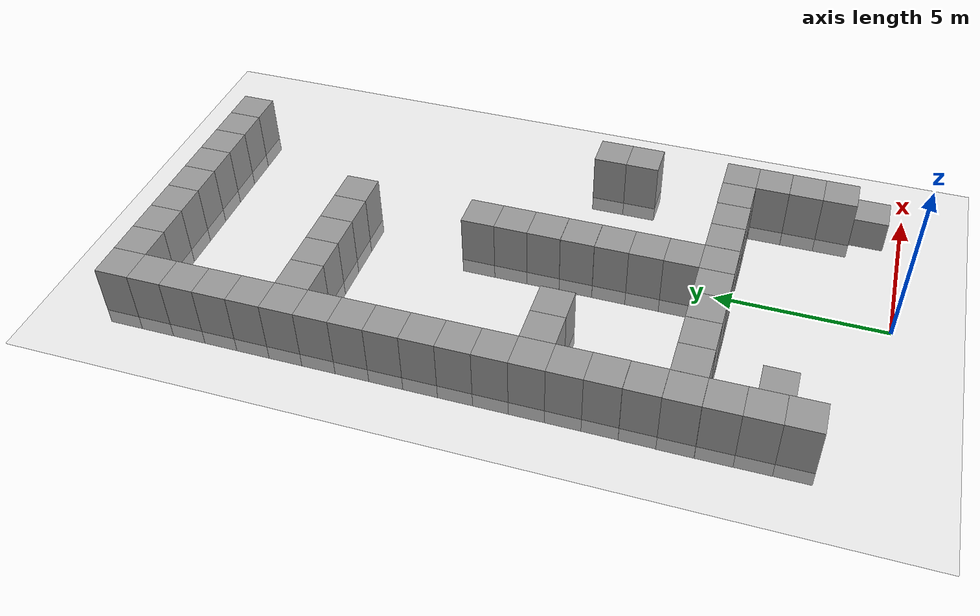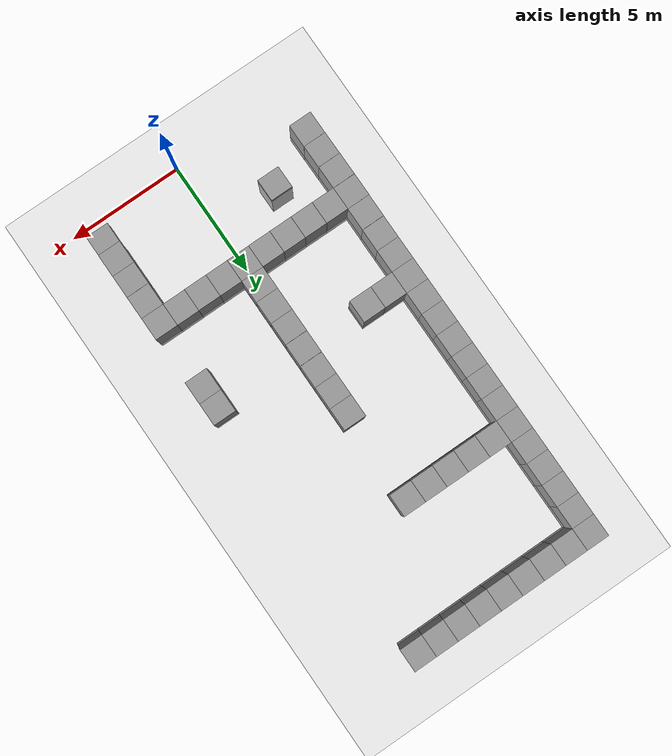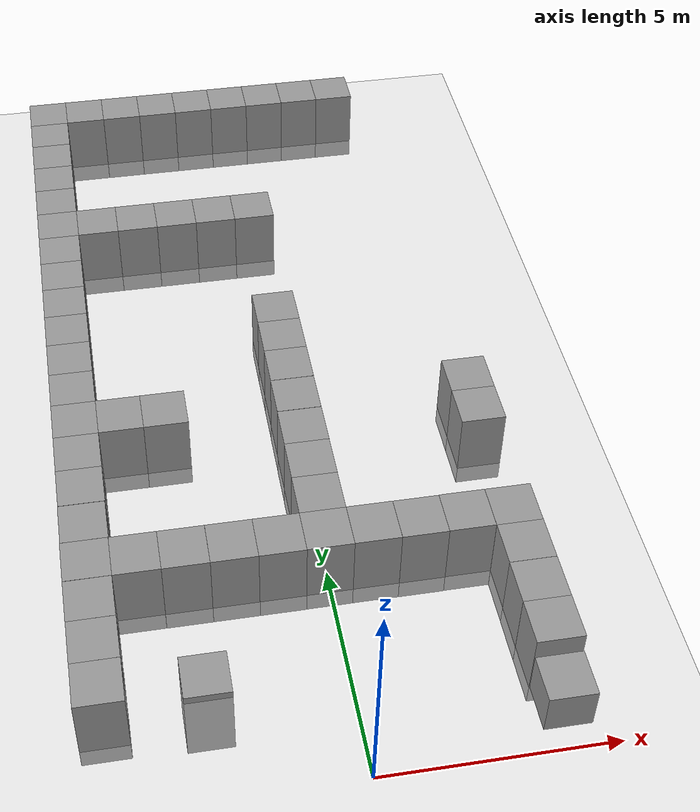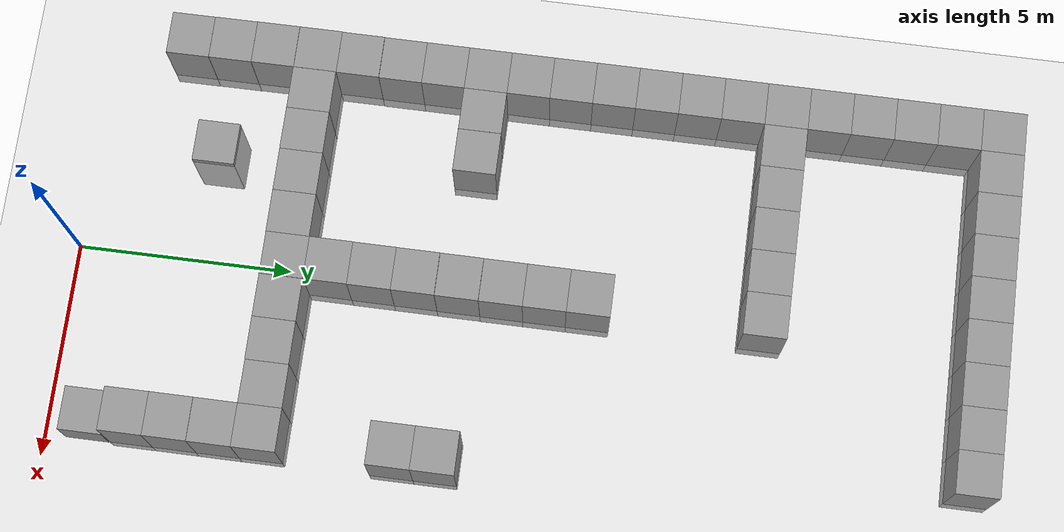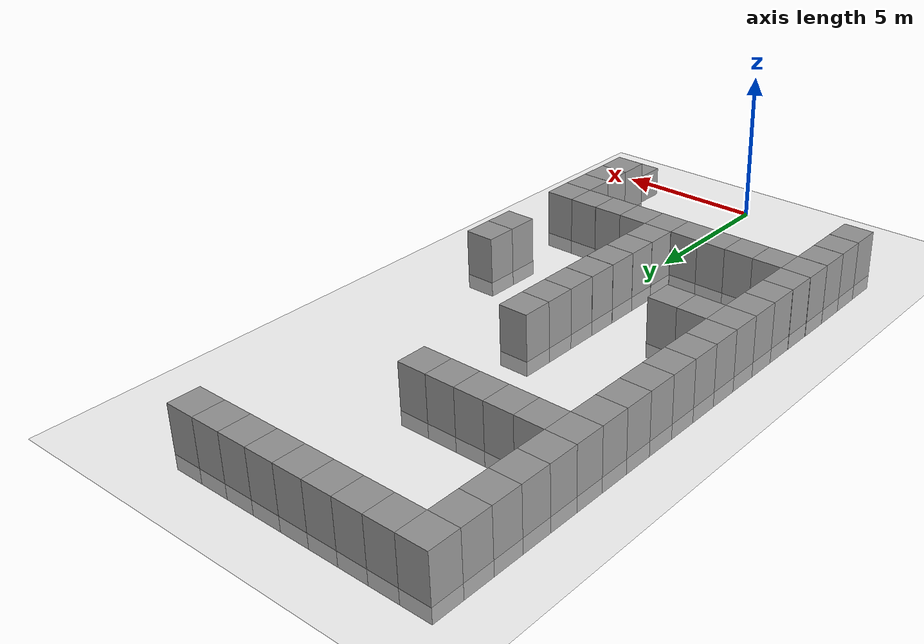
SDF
<sdf version="1.4">
 <world name="default">
  <model name="ground_plane">
   <static>1</static>
   <link name="link">
    <collision name="collision">
     <geometry><plane><normal>0 0 1</normal><size>100 100</size></plane></geometry>
     <surface><friction><ode><mu>100</mu><mu2>50</mu2></ode></friction></surface>
    </collision>
    <visual name="visual">
     <cast_shadows>0</cast_shadows>
     <geometry><plane><normal>0 0 1</normal><size>100 100</size></plane></geometry>
     <material>
      <script><uri>file://media/materials/scripts/gazebo.material</uri><name>Gazebo/Grey</name></script>
     </material>
    </visual>
    <velocity_decay><linear>0</linear><angular>0</angular></velocity_decay>
   </link>
  </model>
  <model name="unit_box_1">
   <pose>-5.01661 4.99523 0.5 0 -0 0.000223</pose>
   <static>1</static>
   <link name="link">
    <inertial>
     <mass>1</mass>
     <inertia><ixx>1</ixx><ixy>0</ixy><ixz>0</ixz><iyy>1</iyy><iyz>0</iyz><izz>1</izz></inertia>
    </inertial>
    <collision name="collision"><geometry><box><size>1 1 2</size></box></geometry></collision>
    <visual name="visual">
     <geometry><box><size>1 1 2</size></box></geometry>
     <material>
      <script><uri>file://media/materials/scripts/gazebo.material</uri><name>Gazebo/Grey</name></script>
     </material>
    </visual>
    <velocity_decay><linear>0</linear><angular>0</angular></velocity_decay>
   </link>
   <static>0</static>
  </model>
  <model name="unit_box_2">
   <pose>-4.01641 4.99001 0.5 0 -0 3e-05</pose>
   <static>1</static>
   <link name="link">
    <inertial>
     <mass>1</mass>
     <inertia><ixx>1</ixx><ixy>0</ixy><ixz>0</ixz><iyy>1</iyy><iyz>0</iyz><izz>1</izz></inertia>
    </inertial>
    <collision name="collision"><geometry><box><size>1 1 2</size></box></geometry></collision>
    <visual name="visual">
     <geometry><box><size>1 1 2</size></box></geometry>
     <material>
      <script><uri>file://media/materials/scripts/gazebo.material</uri><name>Gazebo/Grey</name></script>
     </material>
    </visual>
    <velocity_decay><linear>0</linear><angular>0</angular></velocity_decay>
   </link>
   <static>0</static>
  </model>
  <model name="unit_box_3">
   <pose>-3.0164 4.98791 0.5 0 -0 2.1e-05</pose>
   <static>1</static>
   <link name="link">
    <inertial>
     <mass>1</mass>
     <inertia><ixx>1</ixx><ixy>0</ixy><ixz>0</ixz><iyy>1</iyy><iyz>0</iyz><izz>1</izz></inertia>
    </inertial>
    <collision name="collision"><geometry><box><size>1 1 2</size></box></geometry></collision>
    <visual name="visual">
     <geometry><box><size>1 1 2</size></box></geometry>
     <material>
      <script><uri>file://media/materials/scripts/gazebo.material</uri><name>Gazebo/Grey</name></script>
     </material>
    </visual>
    <velocity_decay><linear>0</linear><angular>0</angular></velocity_decay>
   </link>
   <static>0</static>
  </model>
  <model name="unit_box_4">
   <pose>-2.01625 4.98914 0.5 0 0 -0.000278</pose>
   <static>1</static>
   <link name="link">
    <inertial>
     <mass>1</mass>
     <inertia><ixx>1</ixx><ixy>0</ixy><ixz>0</ixz><iyy>1</iyy><iyz>0</iyz><izz>1</izz></inertia>
    </inertial>
    <collision name="collision"><geometry><box><size>1 1 2</size></box></geometry></collision>
    <visual name="visual">
     <geometry><box><size>1 1 2</size></box></geometry>
     <material>
      <script><uri>file://media/materials/scripts/gazebo.material</uri><name>Gazebo/Grey</name></script>
     </material>
    </visual>
    <velocity_decay><linear>0</linear><angular>0</angular></velocity_decay>
   </link>
   <static>0</static>
  </model>
  <model name="unit_box_5">
   <pose>-1.01623 4.98884 0.5 0 0 -0.000319</pose>
   <static>1</static>
   <link name="link">
    <inertial>
     <mass>1</mass>
     <inertia><ixx>1</ixx><ixy>0</ixy><ixz>0</ixz><iyy>1</iyy><iyz>0</iyz><izz>1</izz></inertia>
    </inertial>
    <collision name="collision"><geometry><box><size>1 1 2</size></box></geometry></collision>
    <visual name="visual">
     <geometry><box><size>1 1 2</size></box></geometry>
     <material>
      <script><uri>file://media/materials/scripts/gazebo.material</uri><name>Gazebo/Grey</name></script>
     </material>
    </visual>
    <velocity_decay><linear>0</linear><angular>0</angular></velocity_decay>
   </link>
   <static>0</static>
  </model>
  <model name="unit_box_6">
   <pose>-0.01622 4.99333 0.5 0 0 -0.000328</pose>
   <static>1</static>
   <link name="link">
    <inertial>
     <mass>1</mass>
     <inertia><ixx>1</ixx><ixy>0</ixy><ixz>0</ixz><iyy>1</iyy><iyz>0</iyz><izz>1</izz></inertia>
    </inertial>
    <collision name="collision"><geometry><box><size>1 1 2</size></box></geometry></collision>
    <visual name="visual">
     <geometry><box><size>1 1 2</size></box></geometry>
     <material>
      <script><uri>file://media/materials/scripts/gazebo.material</uri><name>Gazebo/Grey</name></script>
     </material>
    </visual>
    <velocity_decay><linear>0</linear><angular>0</angular></velocity_decay>
   </link>
   <static>0</static>
  </model>
  <model name="unit_box_7">
   <pose>0.984482 4.99573 0.5 0 0 -0.000753</pose>
   <static>1</static>
   <link name="link">
    <inertial>
     <mass>1</mass>
     <inertia><ixx>1</ixx><ixy>0</ixy><ixz>0</ixz><iyy>1</iyy><iyz>0</iyz><izz>1</izz></inertia>
    </inertial>
    <collision name="collision"><geometry><box><size>1 1 2</size></box></geometry></collision>
    <visual name="visual">
     <geometry><box><size>1 1 2</size></box></geometry>
     <material>
      <script><uri>file://media/materials/scripts/gazebo.material</uri><name>Gazebo/Grey</name></script>
     </material>
    </visual>
    <velocity_decay><linear>0</linear><angular>0</angular></velocity_decay>
   </link>
   <static>0</static>
  </model>
  <model name="unit_box_8">
   <pose>1.98452 4.9935 0.5 0 0 -0.000671</pose>
   <static>1</static>
   <link name="link">
    <inertial>
     <mass>1</mass>
     <inertia><ixx>1</ixx><ixy>0</ixy><ixz>0</ixz><iyy>1</iyy><iyz>0</iyz><izz>1</izz></inertia>
    </inertial>
    <collision name="collision"><geometry><box><size>1 1 2</size></box></geometry></collision>
    <visual name="visual">
     <geometry><box><size>1 1 2</size></box></geometry>
     <material>
      <script><uri>file://media/materials/scripts/gazebo.material</uri><name>Gazebo/Grey</name></script>
     </material>
    </visual>
    <velocity_decay><linear>0</linear><angular>0</angular></velocity_decay>
   </link>
   <static>0</static>
  </model>
  <model name="unit_box_9">
   <pose>2.98458 5.00046 0.5 0 0 -0.000565</pose>
   <static>1</static>
   <link name="link">
    <inertial>
     <mass>1</mass>
     <inertia><ixx>1</ixx><ixy>0</ixy><ixz>0</ixz><iyy>1</iyy><iyz>0</iyz><izz>1</izz></inertia>
    </inertial>
    <collision name="collision"><geometry><box><size>1 1 2</size></box></geometry></collision>
    <visual name="visual">
     <geometry><box><size>1 1 2</size></box></geometry>
     <material>
      <script><uri>file://media/materials/scripts/gazebo.material</uri><name>Gazebo/Grey</name></script>
     </material>
    </visual>
    <velocity_decay><linear>0</linear><angular>0</angular></velocity_decay>
   </link>
   <static>0</static>
  </model>
  <model name="unit_box_10">
   <pose>3.9846 4.99846 0.5 0 0 -0.000527</pose>
   <static>1</static>
   <link name="link">
    <inertial>
     <mass>1</mass>
     <inertia><ixx>1</ixx><ixy>0</ixy><ixz>0</ixz><iyy>1</iyy><iyz>0</iyz><izz>1</izz></inertia>
    </inertial>
    <collision name="collision"><geometry><box><size>1 1 2</size></box></geometry></collision>
    <visual name="visual">
     <geometry><box><size>1 1 2</size></box></geometry>
     <material>
      <script><uri>file://media/materials/scripts/gazebo.material</uri><name>Gazebo/Grey</name></script>
     </material>
    </visual>
    <velocity_decay><linear>0</linear><angular>0</angular></velocity_decay>
   </link>
   <static>0</static>
  </model>
  <model name="unit_box_11">
   <pose>3.98561 3.99843 0.5 0 0 -0.000466</pose>
   <static>1</static>
   <link name="link">
    <inertial>
     <mass>1</mass>
     <inertia><ixx>1</ixx><ixy>0</ixy><ixz>0</ixz><iyy>1</iyy><iyz>0</iyz><izz>1</izz></inertia>
    </inertial>
    <collision name="collision"><geometry><box><size>1 1 2</size></box></geometry></collision>
    <visual name="visual">
     <geometry><box><size>1 1 2</size></box></geometry>
     <material>
      <script><uri>file://media/materials/scripts/gazebo.material</uri><name>Gazebo/Grey</name></script>
     </material>
    </visual>
    <velocity_decay><linear>0</linear><angular>0</angular></velocity_decay>
   </link>
   <static>0</static>
  </model>
  <model name="unit_box_12">
   <pose>3.98357 2.99635 0.5 0 0 -0.000581</pose>
   <static>1</static>
   <link name="link">
    <inertial>
     <mass>1</mass>
     <inertia><ixx>1</ixx><ixy>0</ixy><ixz>0</ixz><iyy>1</iyy><iyz>0</iyz><izz>1</izz></inertia>
    </inertial>
    <collision name="collision"><geometry><box><size>1 1 2</size></box></geometry></collision>
    <visual name="visual">
     <geometry><box><size>1 1 2</size></box></geometry>
     <material>
      <script><uri>file://media/materials/scripts/gazebo.material</uri><name>Gazebo/Grey</name></script>
     </material>
    </visual>
    <velocity_decay><linear>0</linear><angular>0</angular></velocity_decay>
   </link>
   <static>0</static>
  </model>
  <model name="unit_box_13">
   <pose>3.98484 1.99635 0.5 0 0 -0.000581</pose>
   <static>1</static>
   <link name="link">
    <inertial>
     <mass>1</mass>
     <inertia><ixx>1</ixx><ixy>0</ixy><ixz>0</ixz><iyy>1</iyy><iyz>0</iyz><izz>1</izz></inertia>
    </inertial>
    <collision name="collision"><geometry><box><size>1 1 2</size></box></geometry></collision>
    <visual name="visual">
     <geometry><box><size>1 1 2</size></box></geometry>
     <material>
      <script><uri>file://media/materials/scripts/gazebo.material</uri><name>Gazebo/Grey</name></script>
     </material>
    </visual>
    <velocity_decay><linear>0</linear><angular>0</angular></velocity_decay>
   </link>
   <static>0</static>
  </model>
  <model name="unit_box_14">
   <pose>-2.89093 2.74813 -0.83433 0 0 -0.000611</pose>
   <static>1</static>
   <link name="link">
    <inertial>
     <mass>1</mass>
     <inertia><ixx>1</ixx><ixy>0</ixy><ixz>0</ixz><iyy>1</iyy><iyz>0</iyz><izz>1</izz></inertia>
    </inertial>
    <collision name="collision"><geometry><box><size>1 1 2</size></box></geometry></collision>
    <visual name="visual">
     <geometry><box><size>1 1 2</size></box></geometry>
     <material>
      <script><uri>file://media/materials/scripts/gazebo.material</uri><name>Gazebo/Grey</name></script>
     </material>
    </visual>
    <velocity_decay><linear>0</linear><angular>0</angular></velocity_decay>
   </link>
   <static>0</static>
  </model>
  <model name="unit_box_40">
   <pose>-5.01481 3.99235 0.5 0 -0 0.003225</pose>
   <static>1</static>
   <link name="link">
    <inertial>
     <mass>1</mass>
     <inertia><ixx>1</ixx><ixy>0</ixy><ixz>0</ixz><iyy>1</iyy><iyz>0</iyz><izz>1</izz></inertia>
    </inertial>
    <collision name="collision"><geometry><box><size>1 1 2</size></box></geometry></collision>
    <visual name="visual">
     <geometry><box><size>1 1 2</size></box></geometry>
     <material>
      <script><uri>file://media/materials/scripts/gazebo.material</uri><name>Gazebo/Grey</name></script>
     </material>
    </visual>
    <velocity_decay><linear>0</linear><angular>0</angular></velocity_decay>
   </link>
   <static>0</static>
  </model>
  <model name="unit_box_41">
   <pose>-5.00826 2.99203 0.5 0 -0 0.002598</pose>
   <static>1</static>
   <link name="link">
    <inertial>
     <mass>1</mass>
     <inertia><ixx>1</ixx><ixy>0</ixy><ixz>0</ixz><iyy>1</iyy><iyz>0</iyz><izz>1</izz></inertia>
    </inertial>
    <collision name="collision"><geometry><box><size>1 1 2</size></box></geometry></collision>
    <visual name="visual">
     <geometry><box><size>1 1 2</size></box></geometry>
     <material>
      <script><uri>file://media/materials/scripts/gazebo.material</uri><name>Gazebo/Grey</name></script>
     </material>
    </visual>
    <velocity_decay><linear>0</linear><angular>0</angular></velocity_decay>
   </link>
   <static>0</static>
  </model>
  <model name="unit_box_42">
   <pose>-5.0021 1.99164 0.5 0 -0 0.001796</pose>
   <static>1</static>
   <link name="link">
    <inertial>
     <mass>1</mass>
     <inertia><ixx>1</ixx><ixy>0</ixy><ixz>0</ixz><iyy>1</iyy><iyz>0</iyz><izz>1</izz></inertia>
    </inertial>
    <collision name="collision"><geometry><box><size>1 1 2</size></box></geometry></collision>
    <visual name="visual">
     <geometry><box><size>1 1 2</size></box></geometry>
     <material>
      <script><uri>file://media/materials/scripts/gazebo.material</uri><name>Gazebo/Grey</name></script>
     </material>
    </visual>
    <velocity_decay><linear>0</linear><angular>0</angular></velocity_decay>
   </link>
   <static>0</static>
  </model>
  <model name="unit_box_57">
   <pose>-0.014979 5.99334 0.5 0 0 -0.00033</pose>
   <static>1</static>
   <link name="link">
    <inertial>
     <mass>1</mass>
     <inertia><ixx>1</ixx><ixy>0</ixy><ixz>0</ixz><iyy>1</iyy><iyz>0</iyz><izz>1</izz></inertia>
    </inertial>
    <collision name="collision"><geometry><box><size>1 1 2</size></box></geometry></collision>
    <visual name="visual">
     <geometry><box><size>1 1 2</size></box></geometry>
     <material>
      <script><uri>file://media/materials/scripts/gazebo.material</uri><name>Gazebo/Grey</name></script>
     </material>
    </visual>
    <velocity_decay><linear>0</linear><angular>0</angular></velocity_decay>
   </link>
   <static>0</static>
  </model>
  <model name="unit_box_58">
   <pose>-0.010958 6.99335 0.5 0 0 -0.00031</pose>
   <static>1</static>
   <link name="link">
    <inertial>
     <mass>1</mass>
     <inertia><ixx>1</ixx><ixy>0</ixy><ixz>0</ixz><iyy>1</iyy><iyz>0</iyz><izz>1</izz></inertia>
    </inertial>
    <collision name="collision"><geometry><box><size>1 1 2</size></box></geometry></collision>
    <visual name="visual">
     <geometry><box><size>1 1 2</size></box></geometry>
     <material>
      <script><uri>file://media/materials/scripts/gazebo.material</uri><name>Gazebo/Grey</name></script>
     </material>
    </visual>
    <velocity_decay><linear>0</linear><angular>0</angular></velocity_decay>
   </link>
   <static>0</static>
  </model>
  <model name="unit_box_59">
   <pose>-0.007655 7.99337 0.5 0 0 -0.000262</pose>
   <static>1</static>
   <link name="link">
    <inertial>
     <mass>1</mass>
     <inertia><ixx>1</ixx><ixy>0</ixy><ixz>0</ixz><iyy>1</iyy><iyz>0</iyz><izz>1</izz></inertia>
    </inertial>
    <collision name="collision"><geometry><box><size>1 1 2</size></box></geometry></collision>
    <visual name="visual">
     <geometry><box><size>1 1 2</size></box></geometry>
     <material>
      <script><uri>file://media/materials/scripts/gazebo.material</uri><name>Gazebo/Grey</name></script>
     </material>
    </visual>
    <velocity_decay><linear>0</linear><angular>0</angular></velocity_decay>
   </link>
   <static>0</static>
  </model>
  <model name="unit_box_60">
   <pose>-0.004062 8.99709 0.5 0 0 -8.2e-05</pose>
   <static>1</static>
   <link name="link">
    <inertial>
     <mass>1</mass>
     <inertia><ixx>1</ixx><ixy>0</ixy><ixz>0</ixz><iyy>1</iyy><iyz>0</iyz><izz>1</izz></inertia>
    </inertial>
    <collision name="collision"><geometry><box><size>1 1 2</size></box></geometry></collision>
    <visual name="visual">
     <geometry><box><size>1 1 2</size></box></geometry>
     <material>
      <script><uri>file://media/materials/scripts/gazebo.material</uri><name>Gazebo/Grey</name></script>
     </material>
    </visual>
    <velocity_decay><linear>0</linear><angular>0</angular></velocity_decay>
   </link>
   <static>0</static>
  </model>
  <model name="unit_box_61">
   <pose>-5.0071 5.99581 0.5 0 0 -0.000452</pose>
   <static>1</static>
   <link name="link">
    <inertial>
     <mass>1</mass>
     <inertia><ixx>1</ixx><ixy>0</ixy><ixz>0</ixz><iyy>1</iyy><iyz>0</iyz><izz>1</izz></inertia>
    </inertial>
    <collision name="collision"><geometry><box><size>1 1 2</size></box></geometry></collision>
    <visual name="visual">
     <geometry><box><size>1 1 2</size></box></geometry>
     <material>
      <script><uri>file://media/materials/scripts/gazebo.material</uri><name>Gazebo/Grey</name></script>
     </material>
    </visual>
    <velocity_decay><linear>0</linear><angular>0</angular></velocity_decay>
   </link>
   <static>0</static>
  </model>
  <model name="unit_box_62">
   <pose>0 10 0.5 0 -0 0</pose>
   <static>1</static>
   <link name="link">
    <inertial>
     <mass>1</mass>
     <inertia><ixx>1</ixx><ixy>0</ixy><ixz>0</ixz><iyy>1</iyy><iyz>0</iyz><izz>1</izz></inertia>
    </inertial>
    <collision name="collision"><geometry><box><size>1 1 2</size></box></geometry></collision>
    <visual name="visual">
     <geometry><box><size>1 1 2</size></box></geometry>
     <material>
      <script><uri>file://media/materials/scripts/gazebo.material</uri><name>Gazebo/Grey</name></script>
     </material>
    </visual>
    <velocity_decay><linear>0</linear><angular>0</angular></velocity_decay>
   </link>
   <static>0</static>
  </model>
  <model name="unit_box_63">
   <pose>0 11 0.5 0 -0 0</pose>
   <static>1</static>
   <link name="link">
    <inertial>
     <mass>1</mass>
     <inertia><ixx>1</ixx><ixy>0</ixy><ixz>0</ixz><iyy>1</iyy><iyz>0</iyz><izz>1</izz></inertia>
    </inertial>
    <collision name="collision"><geometry><box><size>1 1 2</size></box></geometry></collision>
    <visual name="visual">
     <geometry><box><size>1 1 2</size></box></geometry>
     <material>
      <script><uri>file://media/materials/scripts/gazebo.material</uri><name>Gazebo/Grey</name></script>
     </material>
    </visual>
    <velocity_decay><linear>0</linear><angular>0</angular></velocity_decay>
   </link>
   <static>0</static>
  </model>
  <model name="unit_box_64">
   <pose>0 12 0.5 0 -0 0</pose>
   <static>1</static>
   <link name="link">
    <inertial>
     <mass>1</mass>
     <inertia><ixx>1</ixx><ixy>0</ixy><ixz>0</ixz><iyy>1</iyy><iyz>0</iyz><izz>1</izz></inertia>
    </inertial>
    <collision name="collision"><geometry><box><size>1 1 2</size></box></geometry></collision>
    <visual name="visual">
     <geometry><box><size>1 1 2</size></box></geometry>
     <material>
      <script><uri>file://media/materials/scripts/gazebo.material</uri><name>Gazebo/Grey</name></script>
     </material>
    </visual>
    <velocity_decay><linear>0</linear><angular>0</angular></velocity_decay>
   </link>
   <static>0</static>
  </model>
  <model name="unit_box_67">
   <pose>-5.00001 6.99999 0.5 0 -0 9e-06</pose>
   <static>1</static>
   <link name="link">
    <inertial>
     <mass>1</mass>
     <inertia><ixx>1</ixx><ixy>0</ixy><ixz>0</ixz><iyy>1</iyy><iyz>0</iyz><izz>1</izz></inertia>
    </inertial>
    <collision name="collision"><geometry><box><size>1 1 2</size></box></geometry></collision>
    <visual name="visual">
     <geometry><box><size>1 1 2</size></box></geometry>
     <material>
      <script><uri>file://media/materials/scripts/gazebo.material</uri><name>Gazebo/Grey</name></script>
     </material>
    </visual>
    <velocity_decay><linear>0</linear><angular>0</angular></velocity_decay>
   </link>
   <static>0</static>
  </model>
  <model name="unit_box_68">
   <pose>-5.00001 7.99999 0.5 0 -0 8e-06</pose>
   <static>1</static>
   <link name="link">
    <inertial>
     <mass>1</mass>
     <inertia><ixx>1</ixx><ixy>0</ixy><ixz>0</ixz><iyy>1</iyy><iyz>0</iyz><izz>1</izz></inertia>
    </inertial>
    <collision name="collision"><geometry><box><size>1 1 2</size></box></geometry></collision>
    <visual name="visual">
     <geometry><box><size>1 1 2</size></box></geometry>
     <material>
      <script><uri>file://media/materials/scripts/gazebo.material</uri><name>Gazebo/Grey</name></script>
     </material>
    </visual>
    <velocity_decay><linear>0</linear><angular>0</angular></velocity_decay>
   </link>
   <static>0</static>
  </model>
  <model name="unit_box_69">
   <pose>-5 8.99999 0.5 0 -0 7e-06</pose>
   <static>1</static>
   <link name="link">
    <inertial>
     <mass>1</mass>
     <inertia><ixx>1</ixx><ixy>0</ixy><ixz>0</ixz><iyy>1</iyy><iyz>0</iyz><izz>1</izz></inertia>
    </inertial>
    <collision name="collision"><geometry><box><size>1 1 2</size></box></geometry></collision>
    <visual name="visual">
     <geometry><box><size>1 1 2</size></box></geometry>
     <material>
      <script><uri>file://media/materials/scripts/gazebo.material</uri><name>Gazebo/Grey</name></script>
     </material>
    </visual>
    <velocity_decay><linear>0</linear><angular>0</angular></velocity_decay>
   </link>
   <static>0</static>
  </model>
  <model name="unit_box_70">
   <pose>-4 9 0.5 0 -0 7e-06</pose>
   <static>1</static>
   <link name="link">
    <inertial>
     <mass>1</mass>
     <inertia><ixx>1</ixx><ixy>0</ixy><ixz>0</ixz><iyy>1</iyy><iyz>0</iyz><izz>1</izz></inertia>
    </inertial>
    <collision name="collision"><geometry><box><size>1 1 2</size></box></geometry></collision>
    <visual name="visual">
     <geometry><box><size>1 1 2</size></box></geometry>
     <material>
      <script><uri>file://media/materials/scripts/gazebo.material</uri><name>Gazebo/Grey</name></script>
     </material>
    </visual>
    <velocity_decay><linear>0</linear><angular>0</angular></velocity_decay>
   </link>
   <static>0</static>
  </model>
  <model name="unit_box_71">
   <pose>-2.99999 9 0.5 0 -0 2e-06</pose>
   <static>1</static>
   <link name="link">
    <inertial>
     <mass>1</mass>
     <inertia><ixx>1</ixx><ixy>0</ixy><ixz>0</ixz><iyy>1</iyy><iyz>0</iyz><izz>1</izz></inertia>
    </inertial>
    <collision name="collision"><geometry><box><size>1 1 2</size></box></geometry></collision>
    <visual name="visual">
     <geometry><box><size>1 1 2</size></box></geometry>
     <material>
      <script><uri>file://media/materials/scripts/gazebo.material</uri><name>Gazebo/Grey</name></script>
     </material>
    </visual>
    <velocity_decay><linear>0</linear><angular>0</angular></velocity_decay>
   </link>
   <static>0</static>
  </model>
  <model name="unit_box_72">
   <pose>-4.99999 9.99999 0.5 0 -0 7e-06</pose>
   <static>1</static>
   <link name="link">
    <inertial>
     <mass>1</mass>
     <inertia><ixx>1</ixx><ixy>0</ixy><ixz>0</ixz><iyy>1</iyy><iyz>0</iyz><izz>1</izz></inertia>
    </inertial>
    <collision name="collision"><geometry><box><size>1 1 2</size></box></geometry></collision>
    <visual name="visual">
     <geometry><box><size>1 1 2</size></box></geometry>
     <material>
      <script><uri>file://media/materials/scripts/gazebo.material</uri><name>Gazebo/Grey</name></script>
     </material>
    </visual>
    <velocity_decay><linear>0</linear><angular>0</angular></velocity_decay>
   </link>
   <static>0</static>
  </model>
  <model name="unit_box_73">
   <pose>-5.00001 11 0.5 0 -0 8e-06</pose>
   <static>1</static>
   <link name="link">
    <inertial>
     <mass>1</mass>
     <inertia><ixx>1</ixx><ixy>0</ixy><ixz>0</ixz><iyy>1</iyy><iyz>0</iyz><izz>1</izz></inertia>
    </inertial>
    <collision name="collision"><geometry><box><size>1 1 2</size></box></geometry></collision>
    <visual name="visual">
     <geometry><box><size>1 1 2</size></box></geometry>
     <material>
      <script><uri>file://media/materials/scripts/gazebo.material</uri><name>Gazebo/Grey</name></script>
     </material>
    </visual>
    <velocity_decay><linear>0</linear><angular>0</angular></velocity_decay>
   </link>
   <static>0</static>
  </model>
  <model name="unit_box_74">
   <pose>-5.00001 12 0.5 0 -0 8e-06</pose>
   <static>1</static>
   <link name="link">
    <inertial>
     <mass>1</mass>
     <inertia><ixx>1</ixx><ixy>0</ixy><ixz>0</ixz><iyy>1</iyy><iyz>0</iyz><izz>1</izz></inertia>
    </inertial>
    <collision name="collision"><geometry><box><size>1 1 2</size></box></geometry></collision>
    <visual name="visual">
     <geometry><box><size>1 1 2</size></box></geometry>
     <material>
      <script><uri>file://media/materials/scripts/gazebo.material</uri><name>Gazebo/Grey</name></script>
     </material>
    </visual>
    <velocity_decay><linear>0</linear><angular>0</angular></velocity_decay>
   </link>
   <static>0</static>
  </model>
  <model name="unit_box_75">
   <pose>-5 13 0.5 0 -0 5e-06</pose>
   <static>1</static>
   <link name="link">
    <inertial>
     <mass>1</mass>
     <inertia><ixx>1</ixx><ixy>0</ixy><ixz>0</ixz><iyy>1</iyy><iyz>0</iyz><izz>1</izz></inertia>
    </inertial>
    <collision name="collision"><geometry><box><size>1 1 2</size></box></geometry></collision>
    <visual name="visual">
     <geometry><box><size>1 1 2</size></box></geometry>
     <material>
      <script><uri>file://media/materials/scripts/gazebo.material</uri><name>Gazebo/Grey</name></script>
     </material>
    </visual>
    <velocity_decay><linear>0</linear><angular>0</angular></velocity_decay>
   </link>
   <static>0</static>
  </model>
  <model name="unit_box_76">
   <pose>-5 14 0.5 0 -0 6e-06</pose>
   <static>1</static>
   <link name="link">
    <inertial>
     <mass>1</mass>
     <inertia><ixx>1</ixx><ixy>0</ixy><ixz>0</ixz><iyy>1</iyy><iyz>0</iyz><izz>1</izz></inertia>
    </inertial>
    <collision name="collision"><geometry><box><size>1 1 2</size></box></geometry></collision>
    <visual name="visual">
     <geometry><box><size>1 1 2</size></box></geometry>
     <material>
      <script><uri>file://media/materials/scripts/gazebo.material</uri><name>Gazebo/Grey</name></script>
     </material>
    </visual>
    <velocity_decay><linear>0</linear><angular>0</angular></velocity_decay>
   </link>
   <static>0</static>
  </model>
  <model name="unit_box_77">
   <pose>-4.99999 15 0.5 0 -0 7e-06</pose>
   <static>1</static>
   <link name="link">
    <inertial>
     <mass>1</mass>
     <inertia><ixx>1</ixx><ixy>0</ixy><ixz>0</ixz><iyy>1</iyy><iyz>0</iyz><izz>1</izz></inertia>
    </inertial>
    <collision name="collision"><geometry><box><size>1 1 2</size></box></geometry></collision>
    <visual name="visual">
     <geometry><box><size>1 1 2</size></box></geometry>
     <material>
      <script><uri>file://media/materials/scripts/gazebo.material</uri><name>Gazebo/Grey</name></script>
     </material>
    </visual>
    <velocity_decay><linear>0</linear><angular>0</angular></velocity_decay>
   </link>
   <static>0</static>
  </model>
  <model name="unit_box_78">
   <pose>-5 16 0.5 0 -0 7e-06</pose>
   <static>1</static>
   <link name="link">
    <inertial>
     <mass>1</mass>
     <inertia><ixx>1</ixx><ixy>0</ixy><ixz>0</ixz><iyy>1</iyy><iyz>0</iyz><izz>1</izz></inertia>
    </inertial>
    <collision name="collision"><geometry><box><size>1 1 2</size></box></geometry></collision>
    <visual name="visual">
     <geometry><box><size>1 1 2</size></box></geometry>
     <material>
      <script><uri>file://media/materials/scripts/gazebo.material</uri><name>Gazebo/Grey</name></script>
     </material>
    </visual>
    <velocity_decay><linear>0</linear><angular>0</angular></velocity_decay>
   </link>
   <static>0</static>
  </model>
  <model name="unit_box_79">
   <pose>-4.99997 17 0.5 0 -0 6e-06</pose>
   <static>1</static>
   <link name="link">
    <inertial>
     <mass>1</mass>
     <inertia><ixx>1</ixx><ixy>0</ixy><ixz>0</ixz><iyy>1</iyy><iyz>0</iyz><izz>1</izz></inertia>
    </inertial>
    <collision name="collision"><geometry><box><size>1 1 2</size></box></geometry></collision>
    <visual name="visual">
     <geometry><box><size>1 1 2</size></box></geometry>
     <material>
      <script><uri>file://media/materials/scripts/gazebo.material</uri><name>Gazebo/Grey</name></script>
     </material>
    </visual>
    <velocity_decay><linear>0</linear><angular>0</angular></velocity_decay>
   </link>
   <static>0</static>
  </model>
  <model name="unit_box_80">
   <pose>-4.99997 18 0.5 0 -0 3e-06</pose>
   <static>1</static>
   <link name="link">
    <inertial>
     <mass>1</mass>
     <inertia><ixx>1</ixx><ixy>0</ixy><ixz>0</ixz><iyy>1</iyy><iyz>0</iyz><izz>1</izz></inertia>
    </inertial>
    <collision name="collision"><geometry><box><size>1 1 2</size></box></geometry></collision>
    <visual name="visual">
     <geometry><box><size>1 1 2</size></box></geometry>
     <material>
      <script><uri>file://media/materials/scripts/gazebo.material</uri><name>Gazebo/Grey</name></script>
     </material>
    </visual>
    <velocity_decay><linear>0</linear><angular>0</angular></velocity_decay>
   </link>
   <static>0</static>
  </model>
  <model name="unit_box_81">
   <pose>-4 16 0.5 0 -0 7e-06</pose>
   <static>1</static>
   <link name="link">
    <inertial>
     <mass>1</mass>
     <inertia><ixx>1</ixx><ixy>0</ixy><ixz>0</ixz><iyy>1</iyy><iyz>0</iyz><izz>1</izz></inertia>
    </inertial>
    <collision name="collision"><geometry><box><size>1 1 2</size></box></geometry></collision>
    <visual name="visual">
     <geometry><box><size>1 1 2</size></box></geometry>
     <material>
      <script><uri>file://media/materials/scripts/gazebo.material</uri><name>Gazebo/Grey</name></script>
     </material>
    </visual>
    <velocity_decay><linear>0</linear><angular>0</angular></velocity_decay>
   </link>
   <static>0</static>
  </model>
  <model name="unit_box_82">
   <pose>-2.99999 16 0.5 0 -0 1.1e-05</pose>
   <static>1</static>
   <link name="link">
    <inertial>
     <mass>1</mass>
     <inertia><ixx>1</ixx><ixy>0</ixy><ixz>0</ixz><iyy>1</iyy><iyz>0</iyz><izz>1</izz></inertia>
    </inertial>
    <collision name="collision"><geometry><box><size>1 1 2</size></box></geometry></collision>
    <visual name="visual">
     <geometry><box><size>1 1 2</size></box></geometry>
     <material>
      <script><uri>file://media/materials/scripts/gazebo.material</uri><name>Gazebo/Grey</name></script>
     </material>
    </visual>
    <velocity_decay><linear>0</linear><angular>0</angular></velocity_decay>
   </link>
   <static>0</static>
  </model>
  <model name="unit_box_83">
   <pose>-1.99999 16 0.5 0 -0 1.1e-05</pose>
   <static>1</static>
   <link name="link">
    <inertial>
     <mass>1</mass>
     <inertia><ixx>1</ixx><ixy>0</ixy><ixz>0</ixz><iyy>1</iyy><iyz>0</iyz><izz>1</izz></inertia>
    </inertial>
    <collision name="collision"><geometry><box><size>1 1 2</size></box></geometry></collision>
    <visual name="visual">
     <geometry><box><size>1 1 2</size></box></geometry>
     <material>
      <script><uri>file://media/materials/scripts/gazebo.material</uri><name>Gazebo/Grey</name></script>
     </material>
    </visual>
    <velocity_decay><linear>0</linear><angular>0</angular></velocity_decay>
   </link>
   <static>0</static>
  </model>
  <model name="unit_box_84">
   <pose>-0.999991 16 0.5 0 -0 1.1e-05</pose>
   <static>1</static>
   <link name="link">
    <inertial>
     <mass>1</mass>
     <inertia><ixx>1</ixx><ixy>0</ixy><ixz>0</ixz><iyy>1</iyy><iyz>0</iyz><izz>1</izz></inertia>
    </inertial>
    <collision name="collision"><geometry><box><size>1 1 2</size></box></geometry></collision>
    <visual name="visual">
     <geometry><box><size>1 1 2</size></box></geometry>
     <material>
      <script><uri>file://media/materials/scripts/gazebo.material</uri><name>Gazebo/Grey</name></script>
     </material>
    </visual>
    <velocity_decay><linear>0</linear><angular>0</angular></velocity_decay>
   </link>
   <static>0</static>
  </model>
  <model name="unit_box_85">
   <pose>1.2e-05 16 0.5 0 -0 1e-05</pose>
   <static>1</static>
   <link name="link">
    <inertial>
     <mass>1</mass>
     <inertia><ixx>1</ixx><ixy>0</ixy><ixz>0</ixz><iyy>1</iyy><iyz>0</iyz><izz>1</izz></inertia>
    </inertial>
    <collision name="collision"><geometry><box><size>1 1 2</size></box></geometry></collision>
    <visual name="visual">
     <geometry><box><size>1 1 2</size></box></geometry>
     <material>
      <script><uri>file://media/materials/scripts/gazebo.material</uri><name>Gazebo/Grey</name></script>
     </material>
    </visual>
    <velocity_decay><linear>0</linear><angular>0</angular></velocity_decay>
   </link>
   <static>0</static>
  </model>
  <model name="unit_box_90">
   <pose>3.99999 8 0.5 0 -0 0</pose>
   <static>1</static>
   <link name="link">
    <inertial>
     <mass>1</mass>
     <inertia><ixx>1</ixx><ixy>0</ixy><ixz>0</ixz><iyy>1</iyy><iyz>0</iyz><izz>1</izz></inertia>
    </inertial>
    <collision name="collision"><geometry><box><size>1 1 2</size></box></geometry></collision>
    <visual name="visual">
     <geometry><box><size>1 1 2</size></box></geometry>
     <material>
      <script><uri>file://media/materials/scripts/gazebo.material</uri><name>Gazebo/Grey</name></script>
     </material>
    </visual>
    <velocity_decay><linear>0</linear><angular>0</angular></velocity_decay>
   </link>
   <static>0</static>
  </model>
  <model name="unit_box_91">
   <pose>3.99999 9 0.5 0 -0 1e-06</pose>
   <static>1</static>
   <link name="link">
    <inertial>
     <mass>1</mass>
     <inertia><ixx>1</ixx><ixy>0</ixy><ixz>0</ixz><iyy>1</iyy><iyz>0</iyz><izz>1</izz></inertia>
    </inertial>
    <collision name="collision"><geometry><box><size>1 1 2</size></box></geometry></collision>
    <visual name="visual">
     <geometry><box><size>1 1 2</size></box></geometry>
     <material>
      <script><uri>file://media/materials/scripts/gazebo.material</uri><name>Gazebo/Grey</name></script>
     </material>
    </visual>
    <velocity_decay><linear>0</linear><angular>0</angular></velocity_decay>
   </link>
   <static>0</static>
  </model>
  <model name="unit_box_96">
   <pose>-4.99997 19 0.5 0 -0 1e-06</pose>
   <static>1</static>
   <link name="link">
    <inertial>
     <mass>1</mass>
     <inertia><ixx>1</ixx><ixy>0</ixy><ixz>0</ixz><iyy>1</iyy><iyz>0</iyz><izz>1</izz></inertia>
    </inertial>
    <collision name="collision"><geometry><box><size>1 1 2</size></box></geometry></collision>
    <visual name="visual">
     <geometry><box><size>1 1 2</size></box></geometry>
     <material>
      <script><uri>file://media/materials/scripts/gazebo.material</uri><name>Gazebo/Grey</name></script>
     </material>
    </visual>
    <velocity_decay><linear>0</linear><angular>0</angular></velocity_decay>
   </link>
   <static>0</static>
  </model>
  <model name="unit_box_97">
   <pose>-4.99997 20 0.5 0 -0 1e-06</pose>
   <static>1</static>
   <link name="link">
    <inertial>
     <mass>1</mass>
     <inertia><ixx>1</ixx><ixy>0</ixy><ixz>0</ixz><iyy>1</iyy><iyz>0</iyz><izz>1</izz></inertia>
    </inertial>
    <collision name="collision"><geometry><box><size>1 1 2</size></box></geometry></collision>
    <visual name="visual">
     <geometry><box><size>1 1 2</size></box></geometry>
     <material>
      <script><uri>file://media/materials/scripts/gazebo.material</uri><name>Gazebo/Grey</name></script>
     </material>
    </visual>
    <velocity_decay><linear>0</linear><angular>0</angular></velocity_decay>
   </link>
   <static>0</static>
  </model>
  <model name="unit_box_98">
   <pose>-5.00001 21 0.5 0 -0 0</pose>
   <static>1</static>
   <link name="link">
    <inertial>
     <mass>1</mass>
     <inertia><ixx>1</ixx><ixy>0</ixy><ixz>0</ixz><iyy>1</iyy><iyz>0</iyz><izz>1</izz></inertia>
    </inertial>
    <collision name="collision"><geometry><box><size>1 1 2</size></box></geometry></collision>
    <visual name="visual">
     <geometry><box><size>1 1 2</size></box></geometry>
     <material>
      <script><uri>file://media/materials/scripts/gazebo.material</uri><name>Gazebo/Grey</name></script>
     </material>
    </visual>
    <velocity_decay><linear>0</linear><angular>0</angular></velocity_decay>
   </link>
   <static>0</static>
  </model>
  <model name="unit_box_99">
   <pose>-4.00001 21 0.5 0 0 -1e-06</pose>
   <static>1</static>
   <link name="link">
    <inertial>
     <mass>1</mass>
     <inertia><ixx>1</ixx><ixy>0</ixy><ixz>0</ixz><iyy>1</iyy><iyz>0</iyz><izz>1</izz></inertia>
    </inertial>
    <collision name="collision"><geometry><box><size>1 1 2</size></box></geometry></collision>
    <visual name="visual">
     <geometry><box><size>1 1 2</size></box></geometry>
     <material>
      <script><uri>file://media/materials/scripts/gazebo.material</uri><name>Gazebo/Grey</name></script>
     </material>
    </visual>
    <velocity_decay><linear>0</linear><angular>0</angular></velocity_decay>
   </link>
   <static>0</static>
  </model>
  <model name="unit_box_100">
   <pose>-3.00001 21 0.5 0 0 -1e-06</pose>
   <static>1</static>
   <link name="link">
    <inertial>
     <mass>1</mass>
     <inertia><ixx>1</ixx><ixy>0</ixy><ixz>0</ixz><iyy>1</iyy><iyz>0</iyz><izz>1</izz></inertia>
    </inertial>
    <collision name="collision"><geometry><box><size>1 1 2</size></box></geometry></collision>
    <visual name="visual">
     <geometry><box><size>1 1 2</size></box></geometry>
     <material>
      <script><uri>file://media/materials/scripts/gazebo.material</uri><name>Gazebo/Grey</name></script>
     </material>
    </visual>
    <velocity_decay><linear>0</linear><angular>0</angular></velocity_decay>
   </link>
   <static>0</static>
  </model>
  <model name="unit_box_101">
   <pose>-2.00001 21 0.5 0 0 -1e-06</pose>
   <static>1</static>
   <link name="link">
    <inertial>
     <mass>1</mass>
     <inertia><ixx>1</ixx><ixy>0</ixy><ixz>0</ixz><iyy>1</iyy><iyz>0</iyz><izz>1</izz></inertia>
    </inertial>
    <collision name="collision"><geometry><box><size>1 1 2</size></box></geometry></collision>
    <visual name="visual">
     <geometry><box><size>1 1 2</size></box></geometry>
     <material>
      <script><uri>file://media/materials/scripts/gazebo.material</uri><name>Gazebo/Grey</name></script>
     </material>
    </visual>
    <velocity_decay><linear>0</linear><angular>0</angular></velocity_decay>
   </link>
   <static>0</static>
  </model>
  <model name="unit_box_102">
   <pose>-1.00001 21 0.5 0 -0 0</pose>
   <static>1</static>
   <link name="link">
    <inertial>
     <mass>1</mass>
     <inertia><ixx>1</ixx><ixy>0</ixy><ixz>0</ixz><iyy>1</iyy><iyz>0</iyz><izz>1</izz></inertia>
    </inertial>
    <collision name="collision"><geometry><box><size>1 1 2</size></box></geometry></collision>
    <visual name="visual">
     <geometry><box><size>1 1 2</size></box></geometry>
     <material>
      <script><uri>file://media/materials/scripts/gazebo.material</uri><name>Gazebo/Grey</name></script>
     </material>
    </visual>
    <velocity_decay><linear>0</linear><angular>0</angular></velocity_decay>
   </link>
   <static>0</static>
  </model>
  <model name="unit_box_103">
   <pose>-1e-05 21 0.5 0 -0 0</pose>
   <static>1</static>
   <link name="link">
    <inertial>
     <mass>1</mass>
     <inertia><ixx>1</ixx><ixy>0</ixy><ixz>0</ixz><iyy>1</iyy><iyz>0</iyz><izz>1</izz></inertia>
    </inertial>
    <collision name="collision"><geometry><box><size>1 1 2</size></box></geometry></collision>
    <visual name="visual">
     <geometry><box><size>1 1 2</size></box></geometry>
     <material>
      <script><uri>file://media/materials/scripts/gazebo.material</uri><name>Gazebo/Grey</name></script>
     </material>
    </visual>
    <velocity_decay><linear>0</linear><angular>0</angular></velocity_decay>
   </link>
   <static>0</static>
  </model>
  <model name="unit_box_104">
   <pose>0.999991 21 0.5 0 -0 0</pose>
   <static>1</static>
   <link name="link">
    <inertial>
     <mass>1</mass>
     <inertia><ixx>1</ixx><ixy>0</ixy><ixz>0</ixz><iyy>1</iyy><iyz>0</iyz><izz>1</izz></inertia>
    </inertial>
    <collision name="collision"><geometry><box><size>1 1 2</size></box></geometry></collision>
    <visual name="visual">
     <geometry><box><size>1 1 2</size></box></geometry>
     <material>
      <script><uri>file://media/materials/scripts/gazebo.material</uri><name>Gazebo/Grey</name></script>
     </material>
    </visual>
    <velocity_decay><linear>0</linear><angular>0</angular></velocity_decay>
   </link>
   <static>0</static>
  </model>
  <model name="unit_box_105">
   <pose>1.99999 21 0.5 0 -0 0</pose>
   <static>1</static>
   <link name="link">
    <inertial>
     <mass>1</mass>
     <inertia><ixx>1</ixx><ixy>0</ixy><ixz>0</ixz><iyy>1</iyy><iyz>0</iyz><izz>1</izz></inertia>
    </inertial>
    <collision name="collision"><geometry><box><size>1 1 2</size></box></geometry></collision>
    <visual name="visual">
     <geometry><box><size>1 1 2</size></box></geometry>
     <material>
      <script><uri>file://media/materials/scripts/gazebo.material</uri><name>Gazebo/Grey</name></script>
     </material>
    </visual>
    <velocity_decay><linear>0</linear><angular>0</angular></velocity_decay>
   </link>
   <static>0</static>
  </model>
  <model name="unit_box_106">
   <pose>2.99999 21 0.5 0 -0 1e-06</pose>
   <static>1</static>
   <link name="link">
    <inertial>
     <mass>1</mass>
     <inertia><ixx>1</ixx><ixy>0</ixy><ixz>0</ixz><iyy>1</iyy><iyz>0</iyz><izz>1</izz></inertia>
    </inertial>
    <collision name="collision"><geometry><box><size>1 1 2</size></box></geometry></collision>
    <visual name="visual">
     <geometry><box><size>1 1 2</size></box></geometry>
     <material>
      <script><uri>file://media/materials/scripts/gazebo.material</uri><name>Gazebo/Grey</name></script>
     </material>
    </visual>
    <velocity_decay><linear>0</linear><angular>0</angular></velocity_decay>
   </link>
   <static>0</static>
  </model>
  <model name="unit_box_1_1">
   <pose>3.99959 0.995559 0.5 0 -0 -0.002148</pose>
   <link name="link">
    <inertial>
     <mass>1</mass>
     <inertia><ixx>1</ixx><ixy>0</ixy><ixz>0</ixz><iyy>1</iyy><iyz>0</iyz><izz>1</izz></inertia>
    </inertial>
    <collision name="collision"><geometry><box><size>1 1 1</size></box></geometry></collision>
    <visual name="visual">
     <geometry><box><size>1 1 1</size></box></geometry>
     <material>
      <script><uri>file://media/materials/scripts/gazebo.material</uri><name>Gazebo/Grey</name></script>
     </material>
    </visual>
    <velocity_decay><linear>0</linear><angular>0</angular></velocity_decay>
   </link>
   <static>0</static>
  </model>
 </world>
</sdf>
